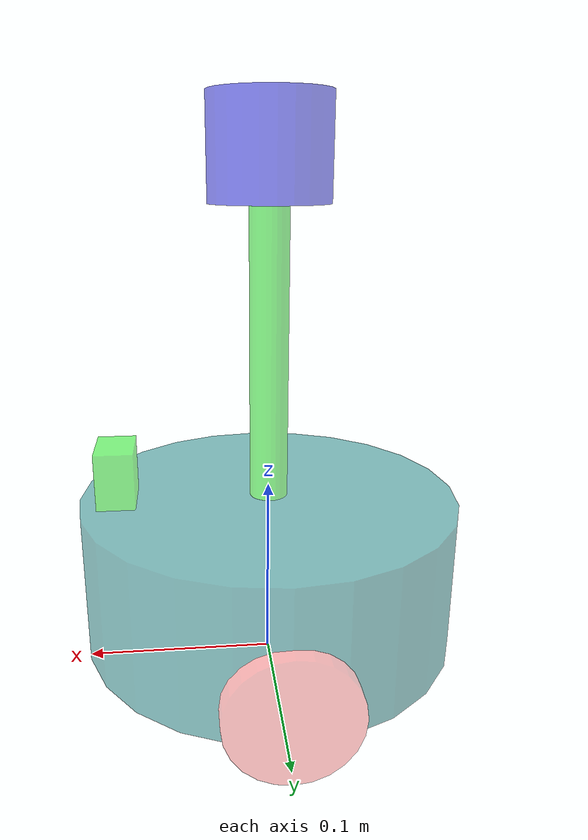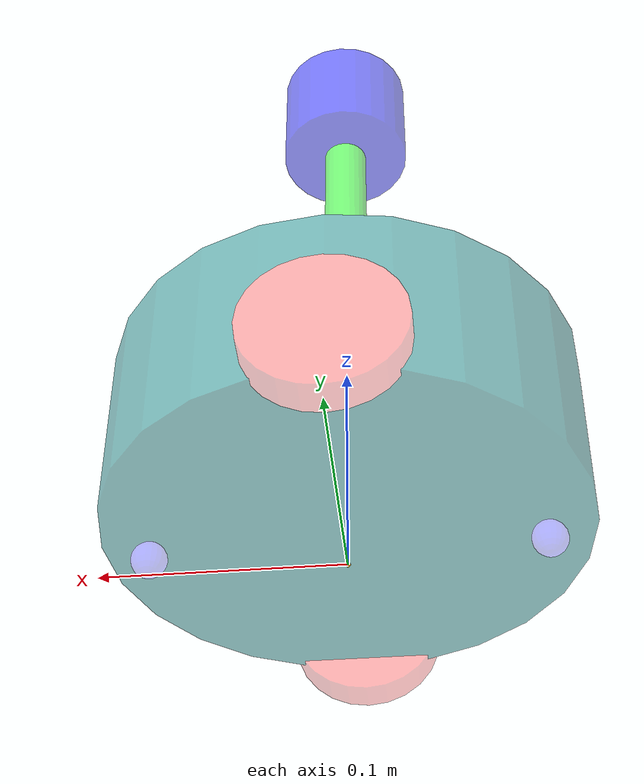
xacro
<robot name="my_robot" xmlns:xacro="http://www.ros.org/wiki/xacro">
    <!-- 包含惯性矩阵文件 -->
    <xacro:include filename="head.xacro"/>
    <!-- 包含底盘、摄像头与雷达的xacro文件 -->
    <xacro:include filename="foot.urdf.xacro"/>
    <xacro:include filename="laser.urdf.xacro"/>
    <xacro:include filename="camera.urdf.xacro"/>
    <!-- 运动控制 -->
    <xacro:include filename="gazebo/move.xacro"/>
     <!-- 雷达 -->
    <xacro:include filename="gazebo/laser.xacro"/>
     <!-- 摄像头 -->
    <xacro:include filename="gazebo/camera.xacro"/>
     <!-- 深度相机 -->
    <xacro:include filename="gazebo/kinect.xacro"/>

</robot>

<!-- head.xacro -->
<robot name="base" xmlns:xacro="http://wiki.ros.org/xacro">
    <!-- 球体惯性矩阵 -->
    <xacro:macro name="sphere_inertial_matrix" params="m r">
        <inertial>
            <mass value="${m}" />
            <inertia ixx="${2*m*r*r/5}" ixy="0" ixz="0"
                     iyy="${2*m*r*r/5}" iyz="0"
                     izz="${2*m*r*r/5}" />
        </inertial>
    </xacro:macro>
    <!-- 圆柱惯性矩阵 -->
    <xacro:macro name="cylinder_inertial_matrix" params="m r h">
        <inertial>
            <mass value="${m}" />
            <inertia ixx="${m*(3*r*r+h*h)/12}" ixy="0" ixz="0"
                     iyy="${m*(3*r*r+h*h)/12}" iyz="0"
                     izz="${m*r*r/2}" />
        </inertial>
    </xacro:macro>
    <!-- 立方体惯性矩阵 -->
    <xacro:macro name="Box_inertial_matrix" params="m l w h">
        <inertial>
            <mass value="${m}" />
            <inertia ixx="${m*(h*h + l*l)/12}" ixy="0" ixz="0"
                     iyy="${m*(w*w + l*l)/12}" iyz="0"
                     izz="${m*(w*w + h*h)/12}" />
        </inertial>
    </xacro:macro>
</robot>

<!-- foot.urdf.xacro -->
<robot name="my_robot" xmlns:xacro="http://www.ros.org/wiki/xacro">
    <xacro:property name="footprint_radius" value="0.001"/>
    <link name="base_footprint">
        <visual>
            <geometry>
                <sphere radius="${footprint_radius}"/>
            </geometry>
        </visual>
    </link>

    <xacro:property name="base_radius" value="0.1"/>
    <xacro:property name="base_length" value="0.08"/>
    <xacro:property name="base_mass" value="2"/>
    <xacro:property name="up_ground" value="0.015"/>
    <xacro:property name="z_move" value="${(base_length/2)+up_ground}"/>
    <link name="base_link">
        <visual>
            <geometry>
                <cylinder radius="${base_radius}" length="${base_length}"/>
            </geometry>
            <origin xyz="0 0 0" rpy="0 0 0"/>
            <material name="base_colour">
                <color rgba="0 0.5 0.5 0.5"/>
            </material>
        </visual>
        <collision>
            <geometry>
                <cylinder radius="${base_radius}" length="${base_length}"/>
            </geometry>
            <origin xyz="0 0 0" rpy="0 0 0"/>
        </collision>
        <!-- 调用惯性矩阵函数 -->
        <xacro:cylinder_inertial_matrix m="${base_mass}" r="${base_radius}" h="${base_length}"/>
    </link>
    <gazebo reference="base_link">
        <material>Gazebo/Yellow</material>
    </gazebo>

    <joint name="base_footprint" type="fixed">
        <!-- 父级link -->
        <parent link="base_footprint"/>
        <!-- 子级link    -->
        <child link="base_link"/>
        <!-- 设置偏移量——Z方向偏移量【离地间距+底盘高度/2】 -->
        <origin xyz="0 0 ${z_move}" rpy="0 0 0"/>
    </joint>

    <!-- （驱动轮部分） -->
    <xacro:macro name="drive_name" params="drive_side flag">
        <xacro:property name="drive_radius" value="0.0325"/>
        <xacro:property name="drive_length" value="0.015"/>
        <xacro:property name="drive_mass" value="0.05"/>
        <xacro:property name="PI" value="3.1415"/>
        <xacro:property name="drive_zlink" value="${(z_move-drive_radius)*-1}"/>

        <link name="${drive_side}_drive">
            <visual>
                <geometry>
                    <cylinder radius="${drive_radius}" length="${drive_length}"/>
                </geometry>
                <origin xyz="0 0 0" rpy="0 0 0"/>
                <material name="drive_colour">
                    <color rgba="1 0 0 0.3"/>
                </material>
            </visual>
            <collision>
                <geometry>
                    <cylinder radius="${drive_radius}" length="${drive_length}"/>
                </geometry>
                <origin xyz="0 0 0" rpy="0 0 0"/>
            </collision>
            <xacro:cylinder_inertial_matrix m="${drive_mass}" r="${drive_radius}" h="${drive_length}"/>
        </link>
        <gazebo reference="${drive_side}_drive">
            <material>Gazebo/Red</material>
        </gazebo>

        <joint name="base_${drive_side}" type="continuous">
            <!-- 父级link -->
            <parent link="base_link"/>
            <!-- 子级link    -->
            <child link="${drive_side}_drive"/>
            <!-- 设置偏移量——Z方向偏移量【车体高度/2+离地高度-车轮半径】 -->
            <origin xyz="0 ${0.1*flag} ${drive_zlink}" rpy="${PI/2} 0 0"/>
            <!-- 设置关节旋转坐标轴 -->
            <axis xyz="0.0 1.0 0.0"/>
        </joint>
    </xacro:macro>
    <xacro:drive_name drive_side="left" flag="1"/>
    <xacro:drive_name drive_side="right" flag="-1"/>

     <!-- （万向轮部分） -->
    <xacro:property name="gimbal_radius" value="0.0075"/>
    <xacro:property name="gimbal_mass" value="0.01"/>
    <xacro:property name="gimbal_zlink" value="${(z_move-gimbal_radius)*-1}"/>
    <xacro:macro name="gimbal_name" params="gimbal_side flag2">

        <link name="${gimbal_side}_gimbal">
            <visual>
                <geometry>
                    <sphere radius="${gimbal_radius}"/>
                </geometry>
                <origin xyz="0 0 0" rpy="0 0 0"/>
                <material name="gimbal_colour">
                    <color rgba="0 0 1 0.3"/>
                </material>
            </visual>
            <collision>
               <geometry>
                    <sphere radius="${gimbal_radius}"/>
                </geometry>
                <origin xyz="0 0 0" rpy="0 0 0"/>
            </collision>
            <xacro:sphere_inertial_matrix m="${gimbal_mass}" r="${gimbal_radius}" />
        </link>
         <gazebo reference="${gimbal_side}_gimbal">
            <material>Gazebo/Red</material>
        </gazebo>

        <joint name="base_${gimbal_side}" type="continuous">
            <!-- 父级link -->
            <parent link="base_link"/>
            <!-- 子级link    -->
            <child link="${gimbal_side}_gimbal"/>
            <!-- 设置偏移量——Z方向偏移量【车体高度/2+离地高度-车轮半径】 -->
            <origin xyz="${0.08*flag2} 0 ${gimbal_zlink}" rpy="0 0 0"/>
            <!-- 设置关节旋转坐标轴 -->
            <axis xyz="1.0 1.0 1.0"/>
        </joint>
    </xacro:macro>
    <xacro:gimbal_name gimbal_side="front" flag2="1"/>
    <xacro:gimbal_name gimbal_side="back" flag2="-1"/>

</robot>

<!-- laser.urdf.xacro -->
<robot name="my_robot" xmlns:xacro="http://www.ros.org/wiki/xacro">
    <!-- 雷达部分[包含连杆属性、关节属性] -->
    <xacro:property name="connect_radius" value="0.01" />
    <xacro:property name="connect_height" value="0.15" />
    <xacro:property name="connect_mass" value="0.1" />
    <xacro:property name="connect_xmove" value="0" />
    <xacro:property name="connect_ymove" value="0" />
    <xacro:property name="connect_zmove" value="${(base_length+connect_height)/2}" />

    <xacro:property name="laser_radius" value="0.03" />
    <xacro:property name="laser_height" value="0.05" />
    <xacro:property name="laser_mass" value="0.15" />
    <xacro:property name="laser_xmove" value="0" />
    <xacro:property name="laser_ymove" value="0" />
    <xacro:property name="laser_zmove" value="${(connect_height+laser_height)/2}" />
    <!-- 连杆部分构造和连接 -->
    <link name="connect">
        <visual>
            <geometry>
                <cylinder radius="${connect_radius}" length="${connect_height}"/>
            </geometry>
            <origin xyz="0 0 0" rpy="0 0 0"/>
            <material name="camera_colour">
                <color rgba="0 1 0 0.5"/>
            </material>
        </visual>
        <collision>
            <geometry>
                <cylinder radius="${connect_radius}" length="${connect_height}"/>
            </geometry>
            <origin xyz="0 0 0" rpy="0 0 0"/>
        </collision>
        <!-- 调用惯性矩阵函数 -->
        <xacro:cylinder_inertial_matrix m="${connect_mass}" r="${connect_radius}" h="${connect_height}"/>
    </link>
    <gazebo reference="connect">
        <material>Gazebo/Gray</material>
    </gazebo>

    <joint name="base2connect" type="fixed">
            <!-- 父级link -->
            <parent link="base_link"/>
            <!-- 子级link    -->
            <child link="connect"/>
            <!-- 设置偏移量 -->
            <origin xyz="${connect_xmove} ${connect_ymove} ${connect_zmove}" rpy="0 0 0"/>
    </joint>
    <!-- 激光雷达构造和连接 -->
     <link name="laser">
        <visual>
            <geometry>
                <cylinder radius="${laser_radius}" length="${laser_height}"/>
            </geometry>
            <origin xyz="0 0 0" rpy="0 0 0"/>
            <material name="laser_colour">
                <color rgba="0 0 1 0.5"/>
            </material>
        </visual>
        <collision>
            <geometry>
                <cylinder radius="${laser_radius}" length="${laser_height}"/>
            </geometry>
            <origin xyz="0 0 0" rpy="0 0 0"/>
        </collision>
        <!-- 调用惯性矩阵函数 -->
        <xacro:cylinder_inertial_matrix m="${laser_mass}" r="${laser_radius}" h="${laser_height}"/>
    </link>
    <gazebo reference="laser">
        <material>Gazebo/Green</material>
    </gazebo>
    <joint name="connect2laser" type="fixed">
            <!-- 父级link -->
            <parent link="connect"/>
            <!-- 子级link    -->
            <child link="laser"/>
            <!-- 设置偏移量 -->
            <origin xyz="${laser_xmove} ${laser_ymove} ${laser_zmove}" rpy="0 0 0"/>
    </joint>
</robot>

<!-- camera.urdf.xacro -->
<robot name="my_robot" xmlns:xacro="http://www.ros.org/wiki/xacro">
    <!-- 摄像头部件[包含连杆属性、关节属性] -->
    <xacro:property name="camera_length" value="0.02" />
    <xacro:property name="camera_width" value="0.03" />
    <xacro:property name="camera_height" value="0.03" />
    <xacro:property name="camera_mass" value="0.01" />
    <xacro:property name="x_move" value="0.08" />
    <xacro:property name="y_move" value="0" />
    <xacro:property name="z_move" value="${(base_length+camera_height)/2}" />

    <link name="camera">
        <visual>
            <geometry>
                <box size="${camera_length} ${camera_width} ${camera_height}"/>
            </geometry>
            <origin xyz="0 0 0" rpy="0 0 0"/>
            <material name="camera_colour">
                <color rgba="0 1 0 0.5"/>
            </material>
        </visual>
        <collision>
           <geometry>
                <box size="${camera_length} ${camera_width} ${camera_height}"/>
            </geometry>
            <origin xyz="0 0 0" rpy="0 0 0"/>
        </collision>
        <!-- 调用惯性矩阵函数 -->
        <xacro:Box_inertial_matrix m="${camera_mass}" l="${camera_length}" w="${camera_width}" h="${camera_height}"/>
    </link>
    <gazebo reference="camera">
        <material>Gazebo/Blue</material>
    </gazebo>
    <joint name="base2camera" type="fixed">
            <!-- 父级link -->
            <parent link="base_link"/>
            <!-- 子级link    -->
            <child link="camera"/>
            <!-- 设置偏移量 -->
            <origin xyz="${x_move} ${y_move} ${z_move}" rpy="0 0 0"/>
    </joint>
</robot>
